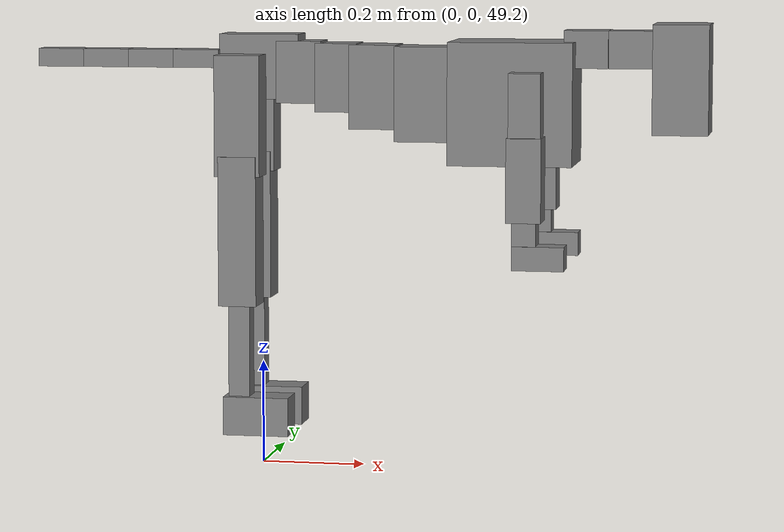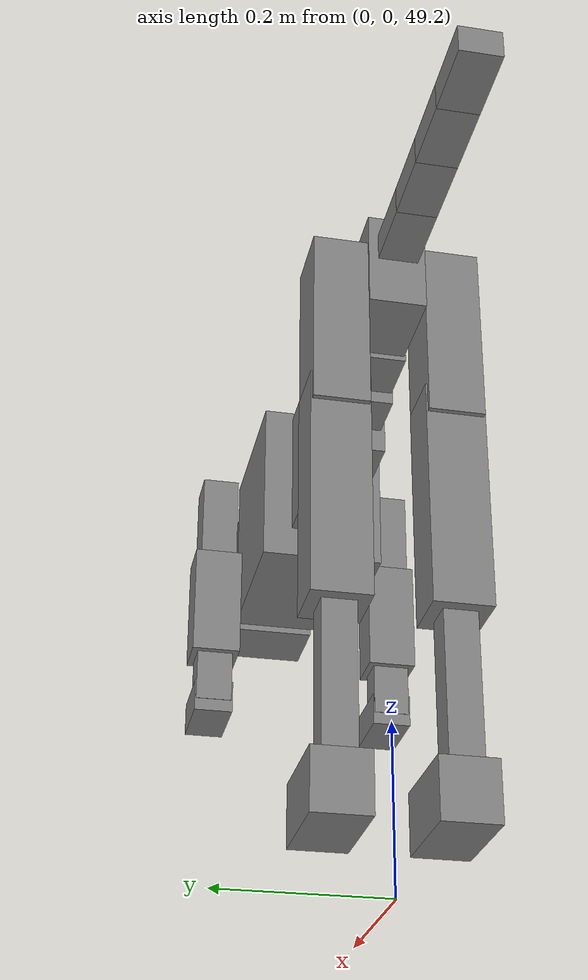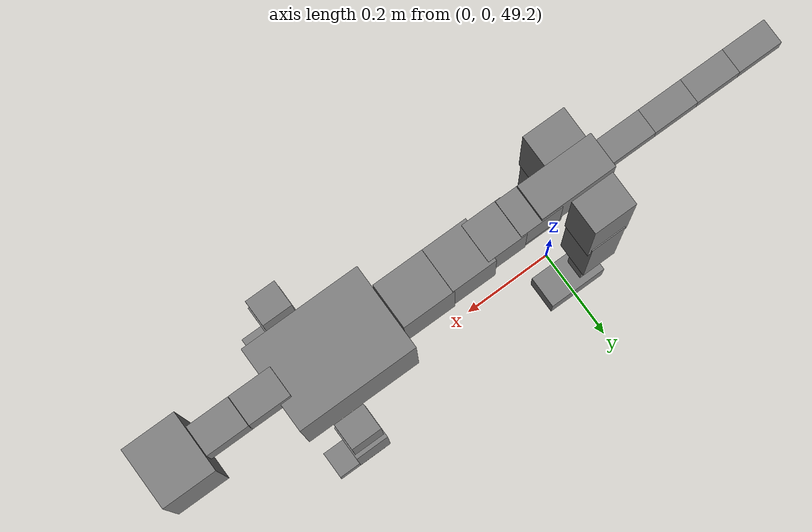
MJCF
<mujoco model="dog">

    <default>
        <joint armature="0.02" stiffness="1" damping="0.2" limited="true"/>
        <geom condim="3" friction="1 0.05 0.05" margin="0.01"/>
        <motor ctrllimited="true" ctrlrange="-1.0 1.0" forcelimited="true" gear="50"/>
    </default>

    <compiler inertiafromgeom="true" angle="radian"/>

    <option timestep="0.016" iterations="50" tolerance="1e-10" solver="Newton" jacobian="dense" cone="pyramidal"/>

    <size nconmax="20000" njmax="60000" nstack="5000000"/>
    <visual>
        <map force="0.1" zfar="30"/>
        <rgba haze="0.15 0.25 0.35 1"/>
        <quality shadowsize="2048"/>
        <global offwidth="800" offheight="800"/>
    </visual>

    <asset>
        <texture type="skybox" builtin="gradient" rgb1="0.3 0.5 0.7" rgb2="0 0 0" width="512" height="512"/>
        <texture name="texplane" type="2d" builtin="checker" rgb1=".2 .3 .4" rgb2=".1 0.15 0.2" width="512" height="512"
                 mark="cross" markrgb=".8 .8 .8"/>
        <texture name="texgeom" type="cube" builtin="flat" mark="cross" width="127" height="1278" rgb1="0.8 0.6 0.4"
                 rgb2="0.8 0.6 0.4" markrgb="1 1 1" random="0.01"/>

        <material name="matplane" reflectance="0.3" texture="texplane" texrepeat="1 1" texuniform="true"/>
        <material name="matgeom" texture="texgeom" texuniform="true" rgba="0.8 0.6 .4 1"/>
    </asset>

    <worldbody>
        <geom name="floor" pos="0 0 0" size="0 0 .25" type="plane" material="matplane" condim="3"/>

        <light directional="false" diffuse=".2 .2 .2" specular="0 0 0" pos="0 0 5" dir="0 0 -1" castshadow="false"/>
        <light mode="targetbodycom" target="torso" directional="false" diffuse=".8 .8 .8" specular="0.3 0.3 0.3"
               pos="0 0 4.0" dir="0 0 -1"/>

        <body name="root" pos="0 0 50">
            <freejoint name="root_1"/>
            <geom type="box" pos="0 0 -0.02" size="0.0774  0.0358  0.063" density="2030"/>

            <body name="spine1" pos="0.054 0 0">
                <joint name="spine1_y" axis="0 1 0" range="0 0.7" limited="true"/>
                <geom type="box" pos="0.02375 0 -0.03" size="0.04375  0.0375  0.05985" density="2030"/>

                <body name="spine2" pos="0.0612 0 0">
                    <joint name="spine2_y" axis="0 1 0" range="-0.15 0.15" limited="true"/>
                    <geom type="box" pos="0.03555  0  -0.04" size="0.04055  0.039  0.06615" density="2030"/>

                    <body name="spine3" pos="0.0730 0 0">
                        <joint name="spine3_y" axis="0 1 0" range="-0.15 0.15" limited="true"/>
                        <geom type="box" pos="0.03555  0  -0.057" size="0.04555  0.0445  0.081" density="2030"/>

                        <body name="spine4" pos="0.0780 0 0">
                            <joint name="spine4_y" axis="0 1 0" range="-0.15 0.15" limited="true"/>
                            <geom type="box" pos="0.05265  0  -0.07" size="0.05265  0.045  0.09135" density="2030"/>

                            <body name="torso" pos="0.1082 0 0">
                                <joint name="torso_y" axis="0 1 0" range="-0.15 0.15" limited="true"/>
                                <geom type="box" pos="0.11925  0  -0.085" size="0.11925  0.085  0.11745"
                                      density="2030"/>

                                <body name="neck1" pos="0.2160  0   0.0180">
                                    <joint name="neck1_y" axis="0 1 0" range="-1.2  -1" limited="true"/>
                                    <geom type="box" pos="0.0423  0  0" size="0.0423  0.03  0.036" density="2325"/>

                                    <body name="neck2" pos="0.0853  0  0">
                                        <joint name="neck2_y" axis="0 1 0" range="0.1  0" limited="true"/>
                                        <geom type="box" pos="0.0423  0  0" size="0.0423  0.03  0.036" density="2325"/>

                                        <body name="head" pos="0.0853  0  0">
                                            <joint name="head_y" axis="0 1 0" range="-0.3  -0.2" limited="true"/>
                                            <geom type="box" pos="0.0531  0  -0.055" size="0.0531  0.06  0.1044"
                                                  density="4030"/>

                                        </body>
                                    </body>
                                </body>

                                <body name="front_shoulder" pos="0.156  0   -0.0480">
                                    <joint name="front_shoulder_y" axis="0 1 0" range="-1 1.5" limited="true"/>
                                    <geom type="box" pos="0 0.13 -0.0473" size="0.0304  0.0260  0.0739" density="1158"/>
                                    <geom type="box" pos="0 -0.13 -0.0473" size="0.0304  0.0260  0.0739"
                                          density="1158"/>

                                    <body name="front_elbow" pos="0  0  -0.0945">
                                        <joint name="front_elbow_y" axis="0 1 0" range="-2 0" limited="true"/>
                                        <geom type="box" pos="0 0.13 -0.0795" size="0.0331  0.0339  0.0795"
                                              density="1081"/>
                                        <geom type="box" pos="0 -0.13 -0.0795" size="0.0331  0.0339  0.0795"
                                              density="1081"/>

                                        <body name="front_wrist" pos="0  0  -0.1589">
                                            <joint name="front_wrist_y" axis="0 1 0" range="-0.2 0" limited="true"/>
                                            <geom type="box" pos="0 0.13 -0.0298" size="0.0228  0.0253  0.0430"
                                                  density="1664"/>
                                            <geom type="box" pos="0 -0.13 -0.0298" size="0.0228  0.0253  0.0430"
                                                  density="1664"/>

                                            <body name="front_finger_end" pos="0  0  -0.0597">
                                                <joint name="front_finger_y" axis="0 1 0" range="-0.4 1"
                                                       limited="true"/>
                                                <geom type="box" pos="0.0270  0.13  -0.0078"
                                                      size="0.0494  0.0270  0.0228" density="1515"/>
                                                <geom type="box" pos="0.0270  -0.13  -0.0078"
                                                      size="0.0494  0.0270  0.0228" density="1515"/>

                                            </body>

                                        </body>
                                    </body>
                                </body>

                            </body>
                        </body>
                    </body>
                </body>
            </body>

            <body name="back_hip" pos="-0.03 0 -0.018">
                <joint name="back_hip_y" axis="0 1 0" range="-1.5 0.3" limited="true"/>
                <geom type="box" pos="0 0.07 -0.0938" size="0.0439  0.0344  0.1166" density="1154"/>
                <geom type="box" pos="0 -0.07 -0.0938" size="0.0439  0.0344  0.1166" density="1154"/>

                <body name="back_knee" pos="0  0  -0.1876">
                    <joint name="back_knee_y" axis="0 1 0" range="0 2.8" limited="true"/>
                    <geom type="box" pos="0 0.07 -0.1289" size="0.0369  0.0364  0.1444" density="1227"/>
                    <geom type="box" pos="0 -0.07 -0.1289" size="0.0369  0.0364  0.1444" density="1227"/>

                    <body name="back_ankle" pos="0  0  -0.2578">
                        <joint name="back_ankle_y" axis="0 1 0" range="-2.2 0" limited="true"/>
                        <geom type="box" pos="0 0.07 -0.1040" size="0.0207  0.0207  0.1152" density="1284"/>
                        <geom type="box" pos="0 -0.07 -0.1040" size="0.0207  0.0207  0.1152" density="1284"/>

                        <body name="back_toe_end" pos="0  0  -0.2079">
                            <joint name="back_toe_y" axis="0 1 0" range="-0.4 1" limited="true"/>
                            <geom type="box" pos="0.0349  0.07  -0.0223" size="0.0640  0.0349  0.0373" density="1515"/>
                            <geom type="box" pos="0.0349  -0.07  -0.0223" size="0.0640  0.0349  0.0373" density="1515"/>

                        </body>
                    </body>
                </body>
            </body>

            <body name="tail1" pos="-0.074 0 -0.006">
                <joint name="tail1_y" axis="0 1 0" range="-0.2 0.2" limited="true"/>
                <geom type="box" pos="-0.0536  0  0" size="0.045  0.025  0.0175" density="1587"/>

                <body name="tail2" pos="-0.09 0 0">
                    <joint name="tail2_y" axis="0 1 0" range="-0.2 0.2" limited="true"/>
                    <geom type="box" pos="-0.0536  0  0" size="0.045  0.025  0.0175" density="1587"/>

                    <body name="tail3" pos="-0.09 0 0">
                        <joint name="tail3_y" axis="0 1 0" range="-0.2 0.2" limited="true"/>
                        <geom type="box" pos="-0.0536  0  0" size="0.045  0.025  0.0175" density="1587"/>

                        <body name="tail4" pos="-0.09 0 0">
                            <joint name="tail4_y" axis="0 1 0" range="-0.2 0.2" limited="true"/>
                            <geom type="box" pos="-0.0536  0  0" size="0.045  0.025  0.0175" density="1587"/>

                        </body>
                    </body>
                </body>
            </body>
        </body>
    </worldbody>

    <actuator>
        <motor joint="spine1_y" forcerange="-150 150     "/>
        <motor joint="spine2_y" forcerange="-150 150     "/>
        <motor joint="spine3_y" forcerange="-150 150     "/>
        <motor joint="spine4_y" forcerange="-150 150     "/>
        <motor joint="torso_y" forcerange="-150 150     "/>
        <motor joint="neck1_y" forcerange="-100 100       "/>
        <motor joint="neck2_y" forcerange="-100 100       "/>
        <motor joint="head_y" forcerange="-150 150       "/>
        <motor joint="front_shoulder_y" forcerange="-108.68 164.75"/>
        <motor joint="front_elbow_y" forcerange="-187.58 158.69"/>
        <motor joint="front_wrist_y" forcerange="-54.93 147.46"/>
        <motor joint="front_finger_y" forcerange="-83.60 20.17"/>
        <motor joint="back_hip_y" forcerange="-328.75 330.00"/>
        <motor joint="back_knee_y" forcerange="-363.51 365.94"/>
        <motor joint="back_angle_y" forcerange="-136.97 95.01"/>
        <motor joint="back_toe_y" forcerange="-114.12 85.11"/>
        <motor joint="tail1_y" forcerange="-50 50     "/>
        <motor joint="tail2_y" forcerange="-50 50     "/>
        <motor joint="tail3_y" forcerange="-50 50     "/>
        <motor joint="tail4_y" forcerange="-50 50     "/>
    </actuator>
</mujoco>
